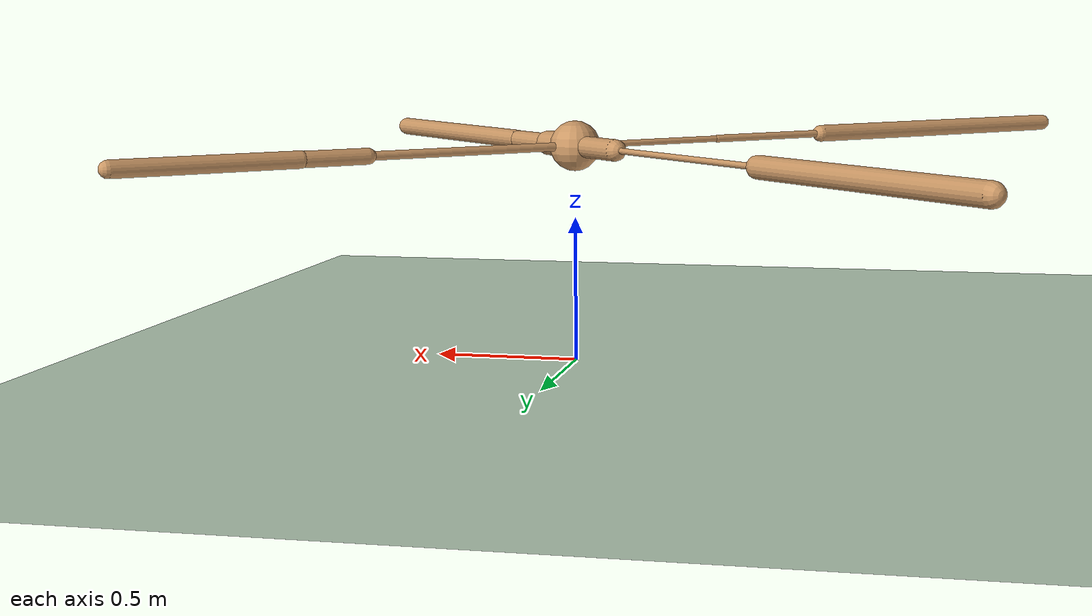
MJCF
<mujoco model="ant">
  <compiler angle="degree" coordinate="local" inertiafromgeom="true" />
  <option integrator="RK4" timestep="0.01" />
  <custom>
    <numeric data="0.0 0.0 0.55 1.0 0.0 0.0 0.0 0.0 1.0 0.0 -1.0 0.0 -1.0 0.0 1.0" name="init_qpos" />
  </custom>
  <default>
    <joint armature="1" damping="1" limited="true" />
    <geom conaffinity="0" condim="3" density="5.0" friction="1 0.5 0.5" margin="0.01" rgba="0.8 0.6 0.4 1" />
  </default>
  <asset>
    <texture builtin="gradient" height="100" rgb1="1 1 1" rgb2="0 0 0" type="skybox" width="100" />
    <texture builtin="flat" height="1278" mark="cross" markrgb="1 1 1" name="texgeom" random="0.01" rgb1="0.8 0.6 0.4" rgb2="0.8 0.6 0.4" type="cube" width="127" />
    <texture builtin="checker" height="100" name="texplane" rgb1="0 0 0" rgb2="0.8 0.8 0.8" type="2d" width="100" />
    <material name="MatPlane" reflectance="0.5" shininess="1" specular="1" texrepeat="60 60" texture="texplane" />
    <material name="geom" texture="texgeom" texuniform="true" />
  </asset>
  <worldbody>
    <light cutoff="100" diffuse="1 1 1" dir="-0 0 -1.3" directional="true" exponent="1" pos="0 0 1.3" specular=".1 .1 .1" />
    <geom conaffinity="1" condim="3" material="MatPlane" name="floor" pos="0 0 0" rgba="0.8 0.9 0.8 1" size="40 40 40" type="plane" />
    <body name="torso" pos="0 0 0.75">
      <camera name="track" mode="trackcom" pos="0 -11 5" xyaxes="1 0 0 0 0.5 1" />
      <geom name="torso_geom" pos="0 0 0" size="0.0868200808763504" type="sphere" />
      <joint armature="0" damping="0" limited="false" margin="0.01" name="root" pos="0 0 0" type="free" />
      <body name="front_left_leg" pos="0 0 0">
        <geom fromto="0 0 0 0.544930100440979 0.544930100440979 0" name="aux_1_geom" size="0.014656629413366318" type="capsule" />
        <body name="aux_1" pos="0.544930100440979 0.544930100440979 0">
          <joint axis="0 0 1" name="hip_1" pos="0.0 0.0 0.0" range="-30 30" type="hinge" />
          <geom fromto="0 0 0 0.15848760306835175 0.15848760306835175 0" name="left_leg_geom" size="0.026431558653712273" type="capsule" />
          <body name="left_leg_geom_aux" pos="0.15848760306835175 0.15848760306835175 0">
            <joint axis="-1 1 0" name="ankle_1" pos="0.0 0.0 0.0" range="30 70" type="hinge" />
            <geom fromto="0 0 0 0.4164634943008423 0.4164634943008423 0" name="left_ankle_geom" size="0.027957318350672722" type="capsule" />
          </body>
        </body>
      </body>
      <body name="front_right_leg" pos="0 0 0">
        <geom fromto="0 0 0 -0.17984651029109955 0.17984651029109955 0" name="aux_2_geom" size="0.03678026795387268" type="capsule" />
        <body name="aux_2" pos="-0.17984651029109955 0.17984651029109955 0">
          <joint axis="0 0 1" name="hip_2" pos="0.0 0.0 0.0" range="-30 30" type="hinge" />
          <geom fromto="0 0 0 -0.5406911373138428 0.5406911373138428 0" name="right_leg_geom" size="0.010166426189243793" type="capsule" />
          <body name="right_leg_geom_aux" pos="-0.5406911373138428 0.5406911373138428 0">
            <joint axis="1 1 0" name="ankle_2" pos="0.0 0.0 0.0" range="-70 -30" type="hinge" />
            <geom fromto="0 0 0 -0.6608669757843018 0.6608669757843018 0" name="right_ankle_geom" size="0.035841912031173706" type="capsule" />
          </body>
        </body>
      </body>
      <body name="back_leg" pos="0 0 0">
        <geom fromto="0 0 0 -0.4311662018299103 -0.4311662018299103 0" name="aux_3_geom" size="0.010904980823397636" type="capsule" />
        <body name="aux_3" pos="-0.4311662018299103 -0.4311662018299103 0">
          <joint axis="0 0 1" name="hip_3" pos="0.0 0.0 0.0" range="-30 30" type="hinge" />
          <geom fromto="0 0 0 -0.35053393244743347 -0.35053393244743347 0" name="back_leg_geom" size="0.01336829736828804" type="capsule" />
          <body name="back_leg_geom_aux" pos="-0.35053393244743347 -0.35053393244743347 0">
            <joint axis="-1 1 0" name="ankle_3" pos="0.0 0.0 0.0" range="-70 -30" type="hinge" />
            <geom fromto="0 0 0 -0.8673291802406311 -0.8673291802406311 0" name="third_ankle_geom" size="0.03137513995170593" type="capsule" />
          </body>
        </body>
      </body>
      <body name="right_back_leg" pos="0 0 0">
        <geom fromto="0 0 0 0.12639611959457397 -0.12639611959457397 0" name="aux_4_geom" size="0.04282490909099579" type="capsule" />
        <body name="aux_4" pos="0.12639611959457397 -0.12639611959457397 0">
          <joint axis="0 0 1" name="hip_4" pos="0.0 0.0 0.0" range="-30 30" type="hinge" />
          <geom fromto="0 0 0 0.15397173166275024 -0.15397173166275024 0" name="rightback_leg_geom" size="0.03186511993408203" type="capsule" />
          <body name="rightback_leg_geom_aux" pos="0.15397173166275024 -0.15397173166275024 0">
            <joint axis="1 1 0" name="ankle_4" pos="0.0 0.0 0.0" range="30 70" type="hinge" />
            <geom fromto="0 0 0 0.6432366371154785 -0.6432366371154785 0" name="fourth_ankle_geom" size="0.03307586908340454" type="capsule" />
          </body>
        </body>
      </body>
    </body>
  </worldbody>
  <actuator>
    <motor ctrllimited="true" ctrlrange="-1.0 1.0" joint="hip_4" gear="150" />
    <motor ctrllimited="true" ctrlrange="-1.0 1.0" joint="ankle_4" gear="150" />
    <motor ctrllimited="true" ctrlrange="-1.0 1.0" joint="hip_1" gear="150" />
    <motor ctrllimited="true" ctrlrange="-1.0 1.0" joint="ankle_1" gear="150" />
    <motor ctrllimited="true" ctrlrange="-1.0 1.0" joint="hip_2" gear="150" />
    <motor ctrllimited="true" ctrlrange="-1.0 1.0" joint="ankle_2" gear="150" />
    <motor ctrllimited="true" ctrlrange="-1.0 1.0" joint="hip_3" gear="150" />
    <motor ctrllimited="true" ctrlrange="-1.0 1.0" joint="ankle_3" gear="150" />
  </actuator>
</mujoco>
